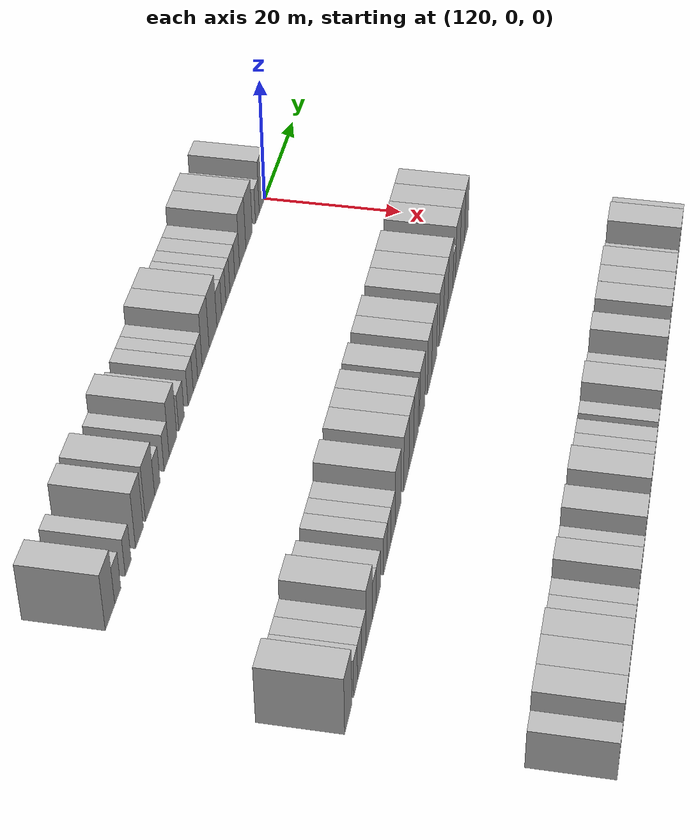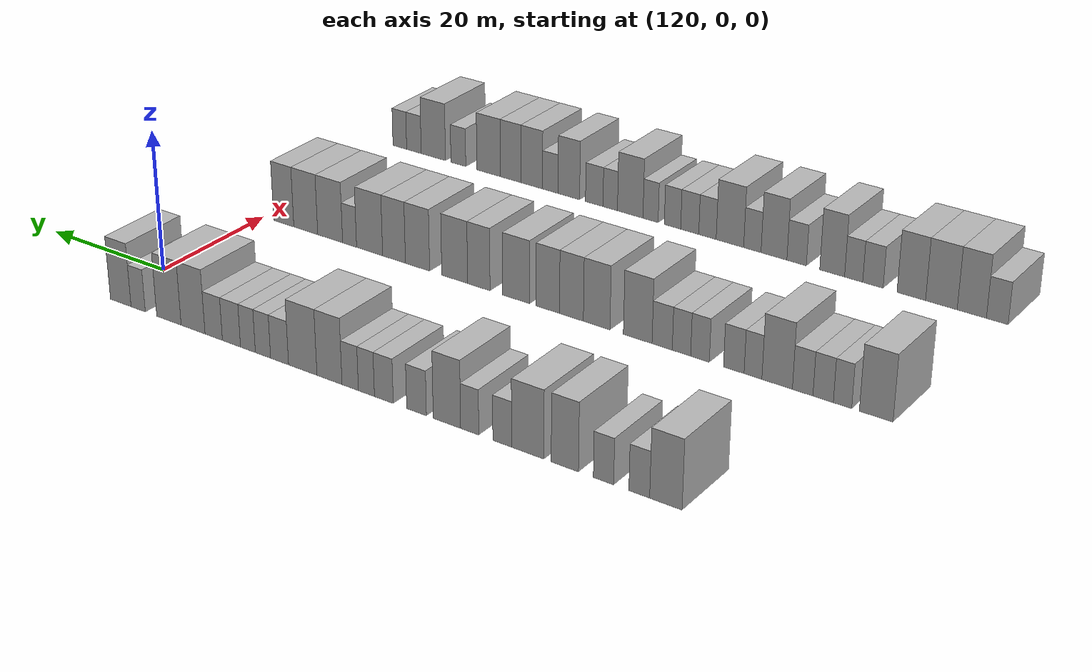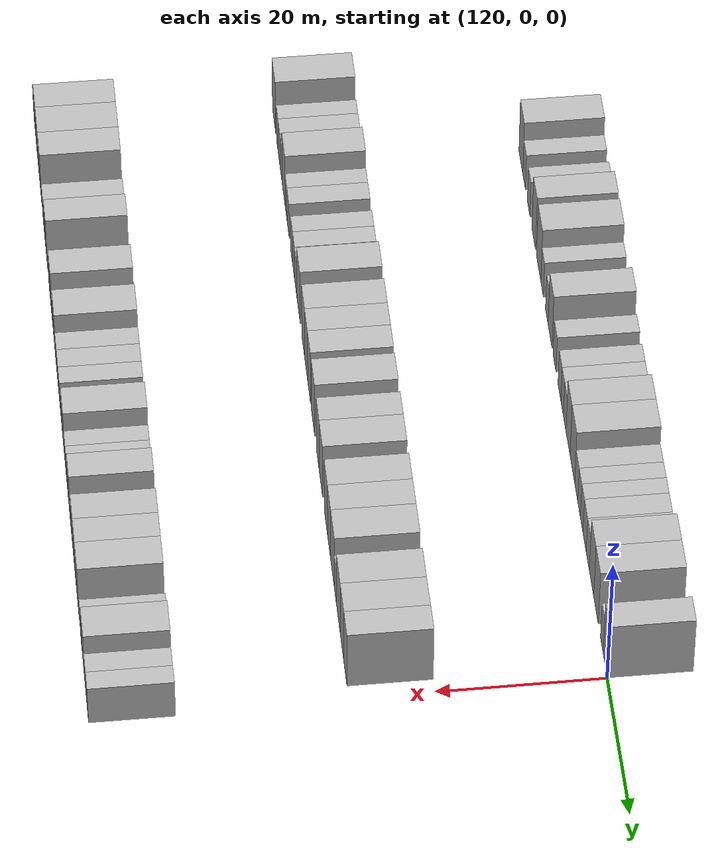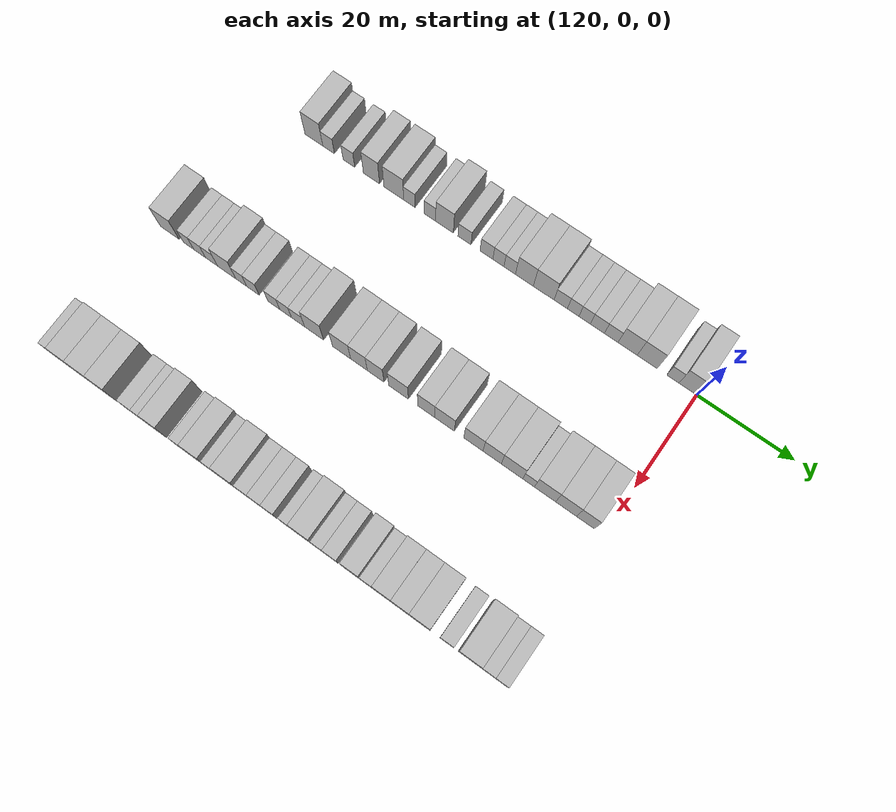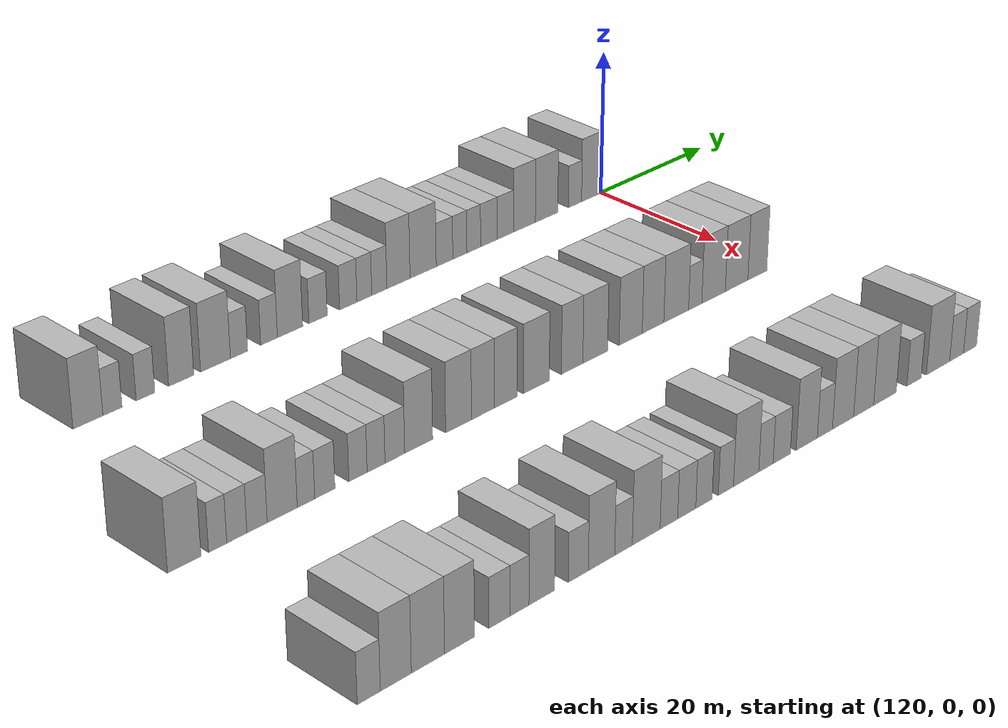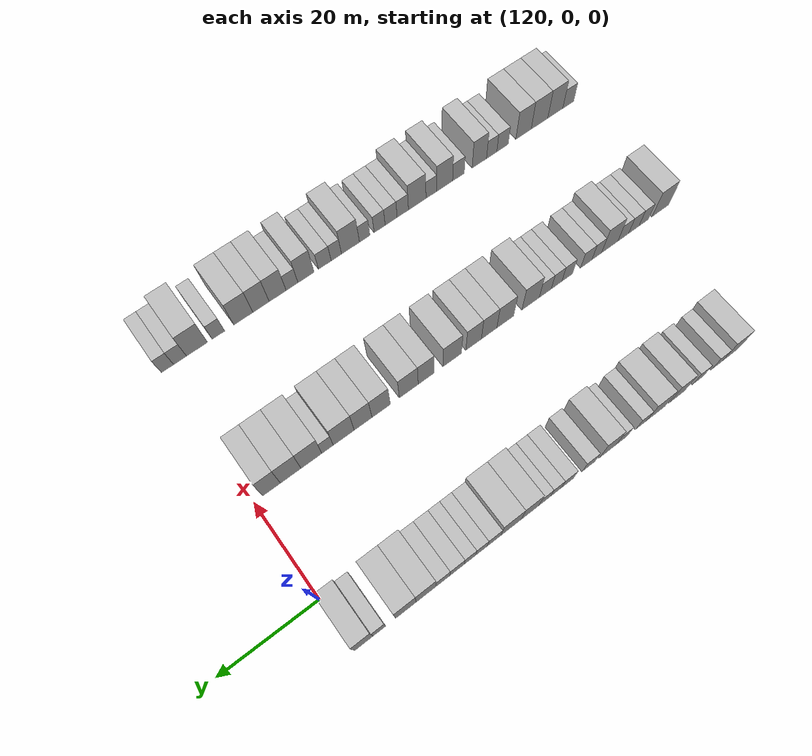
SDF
<sdf version="1.6">
 <world name="default">
  <model name="building_760">
   <static>1</static>
   <pose>115.0000 -84.1463 0 0.000000 0.000000 0.000000</pose>
   <link name="link">
    <pose>0 0 4.50 0 0 0</pose>
    <collision name="collision"><geometry><box><size>10.0000 4.1495 9.0000</size></box></geometry></collision>
    <visual name="visual">
     <cast_shadows>0</cast_shadows>
     <geometry><box><size>10.0000 4.1495 9.0000</size></box></geometry>
     <material>
      <script>
       <uri>model://HANNAS_wall/materials/scripts</uri>
       <uri>model://HANNAS_wall/materials/textures</uri>
       <name>vrc/HANNAS_wall</name>
      </script>
     </material>
    </visual>
   </link>
  </model>
  <model name="building_761">
   <static>1</static>
   <pose>115.0000 -80.7246 0 0.000000 0.000000 0.000000</pose>
   <link name="link">
    <pose>0 0 3.00 0 0 0</pose>
    <collision name="collision"><geometry><box><size>10.0000 2.6938 6.0000</size></box></geometry></collision>
    <visual name="visual">
     <cast_shadows>0</cast_shadows>
     <geometry><box><size>10.0000 2.6938 6.0000</size></box></geometry>
     <material>
      <script>
       <uri>model://HANNAS_wall/materials/scripts</uri>
       <uri>model://HANNAS_wall/materials/textures</uri>
       <name>vrc/HANNAS_wall</name>
      </script>
     </material>
    </visual>
   </link>
  </model>
  <model name="building_762">
   <static>1</static>
   <pose>115.0000 -76.0364 0 0.000000 0.000000 0.000000</pose>
   <link name="link">
    <pose>0 0 3.00 0 0 0</pose>
    <collision name="collision"><geometry><box><size>10.0000 2.6827 6.0000</size></box></geometry></collision>
    <visual name="visual">
     <cast_shadows>0</cast_shadows>
     <geometry><box><size>10.0000 2.6827 6.0000</size></box></geometry>
     <material>
      <script>
       <uri>model://HANNAS_wall/materials/scripts</uri>
       <uri>model://HANNAS_wall/materials/textures</uri>
       <name>vrc/HANNAS_wall</name>
      </script>
     </material>
    </visual>
   </link>
  </model>
  <model name="building_763">
   <static>1</static>
   <pose>115.0000 -70.8469 0 0.000000 0.000000 0.000000</pose>
   <link name="link">
    <pose>0 0 4.50 0 0 0</pose>
    <collision name="collision"><geometry><box><size>10.0000 3.6962 9.0000</size></box></geometry></collision>
    <visual name="visual">
     <cast_shadows>0</cast_shadows>
     <geometry><box><size>10.0000 3.6962 9.0000</size></box></geometry>
     <material>
      <script>
       <uri>model://HANNAS_wall/materials/scripts</uri>
       <uri>model://HANNAS_wall/materials/textures</uri>
       <name>vrc/HANNAS_wall</name>
      </script>
     </material>
    </visual>
   </link>
  </model>
  <model name="building_764">
   <static>1</static>
   <pose>115.0000 -65.7604 0 0.000000 0.000000 0.000000</pose>
   <link name="link">
    <pose>0 0 4.50 0 0 0</pose>
    <collision name="collision"><geometry><box><size>10.0000 4.4770 9.0000</size></box></geometry></collision>
    <visual name="visual">
     <cast_shadows>0</cast_shadows>
     <geometry><box><size>10.0000 4.4770 9.0000</size></box></geometry>
     <material>
      <script>
       <uri>model://HANNAS_wall/materials/scripts</uri>
       <uri>model://HANNAS_wall/materials/textures</uri>
       <name>vrc/HANNAS_wall</name>
      </script>
     </material>
    </visual>
   </link>
  </model>
  <model name="building_765">
   <static>1</static>
   <pose>115.0000 -62.2131 0 0.000000 0.000000 0.000000</pose>
   <link name="link">
    <pose>0 0 3.00 0 0 0</pose>
    <collision name="collision"><geometry><box><size>10.0000 2.6175 6.0000</size></box></geometry></collision>
    <visual name="visual">
     <cast_shadows>0</cast_shadows>
     <geometry><box><size>10.0000 2.6175 6.0000</size></box></geometry>
     <material>
      <script>
       <uri>model://HANNAS_wall/materials/scripts</uri>
       <uri>model://HANNAS_wall/materials/textures</uri>
       <name>vrc/HANNAS_wall</name>
      </script>
     </material>
    </visual>
   </link>
  </model>
  <model name="building_766">
   <static>1</static>
   <pose>115.0000 -57.6091 0 0.000000 0.000000 0.000000</pose>
   <link name="link">
    <pose>0 0 3.00 0 0 0</pose>
    <collision name="collision"><geometry><box><size>10.0000 2.5906 6.0000</size></box></geometry></collision>
    <visual name="visual">
     <cast_shadows>0</cast_shadows>
     <geometry><box><size>10.0000 2.5906 6.0000</size></box></geometry>
     <material>
      <script>
       <uri>model://HANNAS_wall/materials/scripts</uri>
       <uri>model://HANNAS_wall/materials/textures</uri>
       <name>vrc/HANNAS_wall</name>
      </script>
     </material>
    </visual>
   </link>
  </model>
  <model name="building_767">
   <static>1</static>
   <pose>115.0000 -54.3269 0 0.000000 0.000000 0.000000</pose>
   <link name="link">
    <pose>0 0 4.50 0 0 0</pose>
    <collision name="collision"><geometry><box><size>10.0000 3.9738 9.0000</size></box></geometry></collision>
    <visual name="visual">
     <cast_shadows>0</cast_shadows>
     <geometry><box><size>10.0000 3.9738 9.0000</size></box></geometry>
     <material>
      <script>
       <uri>model://HANNAS_wall/materials/scripts</uri>
       <uri>model://HANNAS_wall/materials/textures</uri>
       <name>vrc/HANNAS_wall</name>
      </script>
     </material>
    </visual>
   </link>
  </model>
  <model name="building_768">
   <static>1</static>
   <pose>115.0000 -49.8825 0 0.000000 0.000000 0.000000</pose>
   <link name="link">
    <pose>0 0 3.00 0 0 0</pose>
    <collision name="collision"><geometry><box><size>10.0000 2.9152 6.0000</size></box></geometry></collision>
    <visual name="visual">
     <cast_shadows>0</cast_shadows>
     <geometry><box><size>10.0000 2.9152 6.0000</size></box></geometry>
     <material>
      <script>
       <uri>model://HANNAS_wall/materials/scripts</uri>
       <uri>model://HANNAS_wall/materials/textures</uri>
       <name>vrc/HANNAS_wall</name>
      </script>
     </material>
    </visual>
   </link>
  </model>
  <model name="building_769">
   <static>1</static>
   <pose>115.0000 -45.0076 0 0.000000 0.000000 0.000000</pose>
   <link name="link">
    <pose>0 0 3.00 0 0 0</pose>
    <collision name="collision"><geometry><box><size>10.0000 2.8345 6.0000</size></box></geometry></collision>
    <visual name="visual">
     <cast_shadows>0</cast_shadows>
     <geometry><box><size>10.0000 2.8345 6.0000</size></box></geometry>
     <material>
      <script>
       <uri>model://HANNAS_wall/materials/scripts</uri>
       <uri>model://HANNAS_wall/materials/textures</uri>
       <name>vrc/HANNAS_wall</name>
      </script>
     </material>
    </visual>
   </link>
  </model>
  <model name="building_770">
   <static>1</static>
   <pose>115.0000 -42.3687 0 0.000000 0.000000 0.000000</pose>
   <link name="link">
    <pose>0 0 3.00 0 0 0</pose>
    <collision name="collision"><geometry><box><size>10.0000 2.4432 6.0000</size></box></geometry></collision>
    <visual name="visual">
     <cast_shadows>0</cast_shadows>
     <geometry><box><size>10.0000 2.4432 6.0000</size></box></geometry>
     <material>
      <script>
       <uri>model://HANNAS_wall/materials/scripts</uri>
       <uri>model://HANNAS_wall/materials/textures</uri>
       <name>vrc/HANNAS_wall</name>
      </script>
     </material>
    </visual>
   </link>
  </model>
  <model name="building_771">
   <static>1</static>
   <pose>115.0000 -39.8892 0 0.000000 0.000000 0.000000</pose>
   <link name="link">
    <pose>0 0 3.00 0 0 0</pose>
    <collision name="collision"><geometry><box><size>10.0000 2.5159 6.0000</size></box></geometry></collision>
    <visual name="visual">
     <cast_shadows>0</cast_shadows>
     <geometry><box><size>10.0000 2.5159 6.0000</size></box></geometry>
     <material>
      <script>
       <uri>model://HANNAS_wall/materials/scripts</uri>
       <uri>model://HANNAS_wall/materials/textures</uri>
       <name>vrc/HANNAS_wall</name>
      </script>
     </material>
    </visual>
   </link>
  </model>
  <model name="building_772">
   <static>1</static>
   <pose>115.0000 -36.6785 0 0.000000 0.000000 0.000000</pose>
   <link name="link">
    <pose>0 0 4.50 0 0 0</pose>
    <collision name="collision"><geometry><box><size>10.0000 3.9055 9.0000</size></box></geometry></collision>
    <visual name="visual">
     <cast_shadows>0</cast_shadows>
     <geometry><box><size>10.0000 3.9055 9.0000</size></box></geometry>
     <material>
      <script>
       <uri>model://HANNAS_wall/materials/scripts</uri>
       <uri>model://HANNAS_wall/materials/textures</uri>
       <name>vrc/HANNAS_wall</name>
      </script>
     </material>
    </visual>
   </link>
  </model>
  <model name="building_773">
   <static>1</static>
   <pose>115.0000 -32.4778 0 0.000000 0.000000 0.000000</pose>
   <link name="link">
    <pose>0 0 4.50 0 0 0</pose>
    <collision name="collision"><geometry><box><size>10.0000 4.4957 9.0000</size></box></geometry></collision>
    <visual name="visual">
     <cast_shadows>0</cast_shadows>
     <geometry><box><size>10.0000 4.4957 9.0000</size></box></geometry>
     <material>
      <script>
       <uri>model://HANNAS_wall/materials/scripts</uri>
       <uri>model://HANNAS_wall/materials/textures</uri>
       <name>vrc/HANNAS_wall</name>
      </script>
     </material>
    </visual>
   </link>
  </model>
  <model name="building_774">
   <static>1</static>
   <pose>115.0000 -28.7917 0 0.000000 0.000000 0.000000</pose>
   <link name="link">
    <pose>0 0 3.00 0 0 0</pose>
    <collision name="collision"><geometry><box><size>10.0000 2.8764 6.0000</size></box></geometry></collision>
    <visual name="visual">
     <cast_shadows>0</cast_shadows>
     <geometry><box><size>10.0000 2.8764 6.0000</size></box></geometry>
     <material>
      <script>
       <uri>model://HANNAS_wall/materials/scripts</uri>
       <uri>model://HANNAS_wall/materials/textures</uri>
       <name>vrc/HANNAS_wall</name>
      </script>
     </material>
    </visual>
   </link>
  </model>
  <model name="building_775">
   <static>1</static>
   <pose>115.0000 -26.1145 0 0.000000 0.000000 0.000000</pose>
   <link name="link">
    <pose>0 0 3.00 0 0 0</pose>
    <collision name="collision"><geometry><box><size>10.0000 2.4780 6.0000</size></box></geometry></collision>
    <visual name="visual">
     <cast_shadows>0</cast_shadows>
     <geometry><box><size>10.0000 2.4780 6.0000</size></box></geometry>
     <material>
      <script>
       <uri>model://HANNAS_wall/materials/scripts</uri>
       <uri>model://HANNAS_wall/materials/textures</uri>
       <name>vrc/HANNAS_wall</name>
      </script>
     </material>
    </visual>
   </link>
  </model>
  <model name="building_776">
   <static>1</static>
   <pose>115.0000 -23.6597 0 0.000000 0.000000 0.000000</pose>
   <link name="link">
    <pose>0 0 3.00 0 0 0</pose>
    <collision name="collision"><geometry><box><size>10.0000 2.4317 6.0000</size></box></geometry></collision>
    <visual name="visual">
     <cast_shadows>0</cast_shadows>
     <geometry><box><size>10.0000 2.4317 6.0000</size></box></geometry>
     <material>
      <script>
       <uri>model://HANNAS_wall/materials/scripts</uri>
       <uri>model://HANNAS_wall/materials/textures</uri>
       <name>vrc/HANNAS_wall</name>
      </script>
     </material>
    </visual>
   </link>
  </model>
  <model name="building_777">
   <static>1</static>
   <pose>115.0000 -20.9465 0 0.000000 0.000000 0.000000</pose>
   <link name="link">
    <pose>0 0 3.00 0 0 0</pose>
    <collision name="collision"><geometry><box><size>10.0000 2.9947 6.0000</size></box></geometry></collision>
    <visual name="visual">
     <cast_shadows>0</cast_shadows>
     <geometry><box><size>10.0000 2.9947 6.0000</size></box></geometry>
     <material>
      <script>
       <uri>model://HANNAS_wall/materials/scripts</uri>
       <uri>model://HANNAS_wall/materials/textures</uri>
       <name>vrc/HANNAS_wall</name>
      </script>
     </material>
    </visual>
   </link>
  </model>
  <model name="building_778">
   <static>1</static>
   <pose>115.0000 -17.9931 0 0.000000 0.000000 0.000000</pose>
   <link name="link">
    <pose>0 0 3.00 0 0 0</pose>
    <collision name="collision"><geometry><box><size>10.0000 2.9120 6.0000</size></box></geometry></collision>
    <visual name="visual">
     <cast_shadows>0</cast_shadows>
     <geometry><box><size>10.0000 2.9120 6.0000</size></box></geometry>
     <material>
      <script>
       <uri>model://HANNAS_wall/materials/scripts</uri>
       <uri>model://HANNAS_wall/materials/textures</uri>
       <name>vrc/HANNAS_wall</name>
      </script>
     </material>
    </visual>
   </link>
  </model>
  <model name="building_779">
   <static>1</static>
   <pose>115.0000 -14.5119 0 0.000000 0.000000 0.000000</pose>
   <link name="link">
    <pose>0 0 4.50 0 0 0</pose>
    <collision name="collision"><geometry><box><size>10.0000 4.0502 9.0000</size></box></geometry></collision>
    <visual name="visual">
     <cast_shadows>0</cast_shadows>
     <geometry><box><size>10.0000 4.0502 9.0000</size></box></geometry>
     <material>
      <script>
       <uri>model://HANNAS_wall/materials/scripts</uri>
       <uri>model://HANNAS_wall/materials/textures</uri>
       <name>vrc/HANNAS_wall</name>
      </script>
     </material>
    </visual>
   </link>
  </model>
  <model name="building_780">
   <static>1</static>
   <pose>115.0000 -10.3863 0 0.000000 0.000000 0.000000</pose>
   <link name="link">
    <pose>0 0 4.50 0 0 0</pose>
    <collision name="collision"><geometry><box><size>10.0000 4.2011 9.0000</size></box></geometry></collision>
    <visual name="visual">
     <cast_shadows>0</cast_shadows>
     <geometry><box><size>10.0000 4.2011 9.0000</size></box></geometry>
     <material>
      <script>
       <uri>model://HANNAS_wall/materials/scripts</uri>
       <uri>model://HANNAS_wall/materials/textures</uri>
       <name>vrc/HANNAS_wall</name>
      </script>
     </material>
    </visual>
   </link>
  </model>
  <model name="building_781">
   <static>1</static>
   <pose>115.0000 -5.0350 0 0.000000 0.000000 0.000000</pose>
   <link name="link">
    <pose>0 0 3.00 0 0 0</pose>
    <collision name="collision"><geometry><box><size>10.0000 2.5015 6.0000</size></box></geometry></collision>
    <visual name="visual">
     <cast_shadows>0</cast_shadows>
     <geometry><box><size>10.0000 2.5015 6.0000</size></box></geometry>
     <material>
      <script>
       <uri>model://HANNAS_wall/materials/scripts</uri>
       <uri>model://HANNAS_wall/materials/textures</uri>
       <name>vrc/HANNAS_wall</name>
      </script>
     </material>
    </visual>
   </link>
  </model>
  <model name="building_782">
   <static>1</static>
   <pose>115.0000 -1.9645 0 0.000000 0.000000 0.000000</pose>
   <link name="link">
    <pose>0 0 4.50 0 0 0</pose>
    <collision name="collision"><geometry><box><size>10.0000 3.6394 9.0000</size></box></geometry></collision>
    <visual name="visual">
     <cast_shadows>0</cast_shadows>
     <geometry><box><size>10.0000 3.6394 9.0000</size></box></geometry>
     <material>
      <script>
       <uri>model://HANNAS_wall/materials/scripts</uri>
       <uri>model://HANNAS_wall/materials/textures</uri>
       <name>vrc/HANNAS_wall</name>
      </script>
     </material>
    </visual>
   </link>
  </model>
  <model name="building_987">
   <static>1</static>
   <pose>145.0000 -94.4862 0 0.000000 0.000000 0.000000</pose>
   <link name="link">
    <pose>0 0 4.50 0 0 0</pose>
    <collision name="collision"><geometry><box><size>10.0000 4.3605 9.0000</size></box></geometry></collision>
    <visual name="visual">
     <cast_shadows>0</cast_shadows>
     <geometry><box><size>10.0000 4.3605 9.0000</size></box></geometry>
     <material>
      <script>
       <uri>model://HANNAS_wall/materials/scripts</uri>
       <uri>model://HANNAS_wall/materials/textures</uri>
       <name>vrc/HANNAS_wall</name>
      </script>
     </material>
    </visual>
   </link>
  </model>
  <model name="building_988">
   <static>1</static>
   <pose>145.0000 -90.0959 0 0.000000 0.000000 0.000000</pose>
   <link name="link">
    <pose>0 0 3.00 0 0 0</pose>
    <collision name="collision"><geometry><box><size>10.0000 2.4201 6.0000</size></box></geometry></collision>
    <visual name="visual">
     <cast_shadows>0</cast_shadows>
     <geometry><box><size>10.0000 2.4201 6.0000</size></box></geometry>
     <material>
      <script>
       <uri>model://HANNAS_wall/materials/scripts</uri>
       <uri>model://HANNAS_wall/materials/textures</uri>
       <name>vrc/HANNAS_wall</name>
      </script>
     </material>
    </visual>
   </link>
  </model>
  <model name="building_989">
   <static>1</static>
   <pose>145.0000 -87.5301 0 0.000000 0.000000 0.000000</pose>
   <link name="link">
    <pose>0 0 3.00 0 0 0</pose>
    <collision name="collision"><geometry><box><size>10.0000 2.7117 6.0000</size></box></geometry></collision>
    <visual name="visual">
     <cast_shadows>0</cast_shadows>
     <geometry><box><size>10.0000 2.7117 6.0000</size></box></geometry>
     <material>
      <script>
       <uri>model://HANNAS_wall/materials/scripts</uri>
       <uri>model://HANNAS_wall/materials/textures</uri>
       <name>vrc/HANNAS_wall</name>
      </script>
     </material>
    </visual>
   </link>
  </model>
  <model name="building_990">
   <static>1</static>
   <pose>145.0000 -84.7911 0 0.000000 0.000000 0.000000</pose>
   <link name="link">
    <pose>0 0 3.00 0 0 0</pose>
    <collision name="collision"><geometry><box><size>10.0000 2.7663 6.0000</size></box></geometry></collision>
    <visual name="visual">
     <cast_shadows>0</cast_shadows>
     <geometry><box><size>10.0000 2.7663 6.0000</size></box></geometry>
     <material>
      <script>
       <uri>model://HANNAS_wall/materials/scripts</uri>
       <uri>model://HANNAS_wall/materials/textures</uri>
       <name>vrc/HANNAS_wall</name>
      </script>
     </material>
    </visual>
   </link>
  </model>
  <model name="building_991">
   <static>1</static>
   <pose>145.0000 -81.3256 0 0.000000 0.000000 0.000000</pose>
   <link name="link">
    <pose>0 0 4.50 0 0 0</pose>
    <collision name="collision"><geometry><box><size>10.0000 4.1647 9.0000</size></box></geometry></collision>
    <visual name="visual">
     <cast_shadows>0</cast_shadows>
     <geometry><box><size>10.0000 4.1647 9.0000</size></box></geometry>
     <material>
      <script>
       <uri>model://HANNAS_wall/materials/scripts</uri>
       <uri>model://HANNAS_wall/materials/textures</uri>
       <name>vrc/HANNAS_wall</name>
      </script>
     </material>
    </visual>
   </link>
  </model>
  <model name="building_992">
   <static>1</static>
   <pose>145.0000 -78.0137 0 0.000000 0.000000 0.000000</pose>
   <link name="link">
    <pose>0 0 3.00 0 0 0</pose>
    <collision name="collision"><geometry><box><size>10.0000 2.4592 6.0000</size></box></geometry></collision>
    <visual name="visual">
     <cast_shadows>0</cast_shadows>
     <geometry><box><size>10.0000 2.4592 6.0000</size></box></geometry>
     <material>
      <script>
       <uri>model://HANNAS_wall/materials/scripts</uri>
       <uri>model://HANNAS_wall/materials/textures</uri>
       <name>vrc/HANNAS_wall</name>
      </script>
     </material>
    </visual>
   </link>
  </model>
  <model name="building_993">
   <static>1</static>
   <pose>145.0000 -75.3485 0 0.000000 0.000000 0.000000</pose>
   <link name="link">
    <pose>0 0 3.00 0 0 0</pose>
    <collision name="collision"><geometry><box><size>10.0000 2.8711 6.0000</size></box></geometry></collision>
    <visual name="visual">
     <cast_shadows>0</cast_shadows>
     <geometry><box><size>10.0000 2.8711 6.0000</size></box></geometry>
     <material>
      <script>
       <uri>model://HANNAS_wall/materials/scripts</uri>
       <uri>model://HANNAS_wall/materials/textures</uri>
       <name>vrc/HANNAS_wall</name>
      </script>
     </material>
    </visual>
   </link>
  </model>
  <model name="building_994">
   <static>1</static>
   <pose>145.0000 -70.5817 0 0.000000 0.000000 0.000000</pose>
   <link name="link">
    <pose>0 0 3.00 0 0 0</pose>
    <collision name="collision"><geometry><box><size>10.0000 2.6624 6.0000</size></box></geometry></collision>
    <visual name="visual">
     <cast_shadows>0</cast_shadows>
     <geometry><box><size>10.0000 2.6624 6.0000</size></box></geometry>
     <material>
      <script>
       <uri>model://HANNAS_wall/materials/scripts</uri>
       <uri>model://HANNAS_wall/materials/textures</uri>
       <name>vrc/HANNAS_wall</name>
      </script>
     </material>
    </visual>
   </link>
  </model>
  <model name="building_995">
   <static>1</static>
   <pose>145.0000 -67.9316 0 0.000000 0.000000 0.000000</pose>
   <link name="link">
    <pose>0 0 3.00 0 0 0</pose>
    <collision name="collision"><geometry><box><size>10.0000 2.6379 6.0000</size></box></geometry></collision>
    <visual name="visual">
     <cast_shadows>0</cast_shadows>
     <geometry><box><size>10.0000 2.6379 6.0000</size></box></geometry>
     <material>
      <script>
       <uri>model://HANNAS_wall/materials/scripts</uri>
       <uri>model://HANNAS_wall/materials/textures</uri>
       <name>vrc/HANNAS_wall</name>
      </script>
     </material>
    </visual>
   </link>
  </model>
  <model name="building_996">
   <static>1</static>
   <pose>145.0000 -65.1436 0 0.000000 0.000000 0.000000</pose>
   <link name="link">
    <pose>0 0 3.00 0 0 0</pose>
    <collision name="collision"><geometry><box><size>10.0000 2.9381 6.0000</size></box></geometry></collision>
    <visual name="visual">
     <cast_shadows>0</cast_shadows>
     <geometry><box><size>10.0000 2.9381 6.0000</size></box></geometry>
     <material>
      <script>
       <uri>model://HANNAS_wall/materials/scripts</uri>
       <uri>model://HANNAS_wall/materials/textures</uri>
       <name>vrc/HANNAS_wall</name>
      </script>
     </material>
    </visual>
   </link>
  </model>
  <model name="building_997">
   <static>1</static>
   <pose>145.0000 -61.5649 0 0.000000 0.000000 0.000000</pose>
   <link name="link">
    <pose>0 0 4.50 0 0 0</pose>
    <collision name="collision"><geometry><box><size>10.0000 4.2193 9.0000</size></box></geometry></collision>
    <visual name="visual">
     <cast_shadows>0</cast_shadows>
     <geometry><box><size>10.0000 4.2193 9.0000</size></box></geometry>
     <material>
      <script>
       <uri>model://HANNAS_wall/materials/scripts</uri>
       <uri>model://HANNAS_wall/materials/textures</uri>
       <name>vrc/HANNAS_wall</name>
      </script>
     </material>
    </visual>
   </link>
  </model>
  <model name="building_998">
   <static>1</static>
   <pose>145.0000 -55.4495 0 0.000000 0.000000 0.000000</pose>
   <link name="link">
    <pose>0 0 4.50 0 0 0</pose>
    <collision name="collision"><geometry><box><size>10.0000 4.0115 9.0000</size></box></geometry></collision>
    <visual name="visual">
     <cast_shadows>0</cast_shadows>
     <geometry><box><size>10.0000 4.0115 9.0000</size></box></geometry>
     <material>
      <script>
       <uri>model://HANNAS_wall/materials/scripts</uri>
       <uri>model://HANNAS_wall/materials/textures</uri>
       <name>vrc/HANNAS_wall</name>
      </script>
     </material>
    </visual>
   </link>
  </model>
  <model name="building_999">
   <static>1</static>
   <pose>145.0000 -51.6180 0 0.000000 0.000000 0.000000</pose>
   <link name="link">
    <pose>0 0 4.50 0 0 0</pose>
    <collision name="collision"><geometry><box><size>10.0000 3.6515 9.0000</size></box></geometry></collision>
    <visual name="visual">
     <cast_shadows>0</cast_shadows>
     <geometry><box><size>10.0000 3.6515 9.0000</size></box></geometry>
     <material>
      <script>
       <uri>model://HANNAS_wall/materials/scripts</uri>
       <uri>model://HANNAS_wall/materials/textures</uri>
       <name>vrc/HANNAS_wall</name>
      </script>
     </material>
    </visual>
   </link>
  </model>
  <model name="building_1000">
   <static>1</static>
   <pose>145.0000 -47.9720 0 0.000000 0.000000 0.000000</pose>
   <link name="link">
    <pose>0 0 4.50 0 0 0</pose>
    <collision name="collision"><geometry><box><size>10.0000 3.6406 9.0000</size></box></geometry></collision>
    <visual name="visual">
     <cast_shadows>0</cast_shadows>
     <geometry><box><size>10.0000 3.6406 9.0000</size></box></geometry>
     <material>
      <script>
       <uri>model://HANNAS_wall/materials/scripts</uri>
       <uri>model://HANNAS_wall/materials/textures</uri>
       <name>vrc/HANNAS_wall</name>
      </script>
     </material>
    </visual>
   </link>
  </model>
  <model name="building_1001">
   <static>1</static>
   <pose>145.0000 -43.0184 0 0.000000 0.000000 0.000000</pose>
   <link name="link">
    <pose>0 0 4.50 0 0 0</pose>
    <collision name="collision"><geometry><box><size>10.0000 4.2666 9.0000</size></box></geometry></collision>
    <visual name="visual">
     <cast_shadows>0</cast_shadows>
     <geometry><box><size>10.0000 4.2666 9.0000</size></box></geometry>
     <material>
      <script>
       <uri>model://HANNAS_wall/materials/scripts</uri>
       <uri>model://HANNAS_wall/materials/textures</uri>
       <name>vrc/HANNAS_wall</name>
      </script>
     </material>
    </visual>
   </link>
  </model>
  <model name="building_1002">
   <static>1</static>
   <pose>145.0000 -37.0750 0 0.000000 0.000000 0.000000</pose>
   <link name="link">
    <pose>0 0 4.50 0 0 0</pose>
    <collision name="collision"><geometry><box><size>10.0000 3.6202 9.0000</size></box></geometry></collision>
    <visual name="visual">
     <cast_shadows>0</cast_shadows>
     <geometry><box><size>10.0000 3.6202 9.0000</size></box></geometry>
     <material>
      <script>
       <uri>model://HANNAS_wall/materials/scripts</uri>
       <uri>model://HANNAS_wall/materials/textures</uri>
       <name>vrc/HANNAS_wall</name>
      </script>
     </material>
    </visual>
   </link>
  </model>
  <model name="building_1003">
   <static>1</static>
   <pose>145.0000 -33.1521 0 0.000000 0.000000 0.000000</pose>
   <link name="link">
    <pose>0 0 4.50 0 0 0</pose>
    <collision name="collision"><geometry><box><size>10.0000 4.2256 9.0000</size></box></geometry></collision>
    <visual name="visual">
     <cast_shadows>0</cast_shadows>
     <geometry><box><size>10.0000 4.2256 9.0000</size></box></geometry>
     <material>
      <script>
       <uri>model://HANNAS_wall/materials/scripts</uri>
       <uri>model://HANNAS_wall/materials/textures</uri>
       <name>vrc/HANNAS_wall</name>
      </script>
     </material>
    </visual>
   </link>
  </model>
  <model name="building_1004">
   <static>1</static>
   <pose>145.0000 -27.0145 0 0.000000 0.000000 0.000000</pose>
   <link name="link">
    <pose>0 0 4.50 0 0 0</pose>
    <collision name="collision"><geometry><box><size>10.0000 4.0498 9.0000</size></box></geometry></collision>
    <visual name="visual">
     <cast_shadows>0</cast_shadows>
     <geometry><box><size>10.0000 4.0498 9.0000</size></box></geometry>
     <material>
      <script>
       <uri>model://HANNAS_wall/materials/scripts</uri>
       <uri>model://HANNAS_wall/materials/textures</uri>
       <name>vrc/HANNAS_wall</name>
      </script>
     </material>
    </visual>
   </link>
  </model>
  <model name="building_1005">
   <static>1</static>
   <pose>145.0000 -23.0561 0 0.000000 0.000000 0.000000</pose>
   <link name="link">
    <pose>0 0 4.50 0 0 0</pose>
    <collision name="collision"><geometry><box><size>10.0000 3.8669 9.0000</size></box></geometry></collision>
    <visual name="visual">
     <cast_shadows>0</cast_shadows>
     <geometry><box><size>10.0000 3.8669 9.0000</size></box></geometry>
     <material>
      <script>
       <uri>model://HANNAS_wall/materials/scripts</uri>
       <uri>model://HANNAS_wall/materials/textures</uri>
       <name>vrc/HANNAS_wall</name>
      </script>
     </material>
    </visual>
   </link>
  </model>
  <model name="building_1006">
   <static>1</static>
   <pose>145.0000 -18.8757 0 0.000000 0.000000 0.000000</pose>
   <link name="link">
    <pose>0 0 4.50 0 0 0</pose>
    <collision name="collision"><geometry><box><size>10.0000 4.4938 9.0000</size></box></geometry></collision>
    <visual name="visual">
     <cast_shadows>0</cast_shadows>
     <geometry><box><size>10.0000 4.4938 9.0000</size></box></geometry>
     <material>
      <script>
       <uri>model://HANNAS_wall/materials/scripts</uri>
       <uri>model://HANNAS_wall/materials/textures</uri>
       <name>vrc/HANNAS_wall</name>
      </script>
     </material>
    </visual>
   </link>
  </model>
  <model name="building_1007">
   <static>1</static>
   <pose>145.0000 -15.4148 0 0.000000 0.000000 0.000000</pose>
   <link name="link">
    <pose>0 0 3.00 0 0 0</pose>
    <collision name="collision"><geometry><box><size>10.0000 2.4281 6.0000</size></box></geometry></collision>
    <visual name="visual">
     <cast_shadows>0</cast_shadows>
     <geometry><box><size>10.0000 2.4281 6.0000</size></box></geometry>
     <material>
      <script>
       <uri>model://HANNAS_wall/materials/scripts</uri>
       <uri>model://HANNAS_wall/materials/textures</uri>
       <name>vrc/HANNAS_wall</name>
      </script>
     </material>
    </visual>
   </link>
  </model>
  <model name="building_1008">
   <static>1</static>
   <pose>145.0000 -12.0034 0 0.000000 0.000000 0.000000</pose>
   <link name="link">
    <pose>0 0 4.50 0 0 0</pose>
    <collision name="collision"><geometry><box><size>10.0000 4.3946 9.0000</size></box></geometry></collision>
    <visual name="visual">
     <cast_shadows>0</cast_shadows>
     <geometry><box><size>10.0000 4.3946 9.0000</size></box></geometry>
     <material>
      <script>
       <uri>model://HANNAS_wall/materials/scripts</uri>
       <uri>model://HANNAS_wall/materials/textures</uri>
       <name>vrc/HANNAS_wall</name>
      </script>
     </material>
    </visual>
   </link>
  </model>
  <model name="building_1009">
   <static>1</static>
   <pose>145.0000 -7.6673 0 0.000000 0.000000 0.000000</pose>
   <link name="link">
    <pose>0 0 4.50 0 0 0</pose>
    <collision name="collision"><geometry><box><size>10.0000 4.2778 9.0000</size></box></geometry></collision>
    <visual name="visual">
     <cast_shadows>0</cast_shadows>
     <geometry><box><size>10.0000 4.2778 9.0000</size></box></geometry>
     <material>
      <script>
       <uri>model://HANNAS_wall/materials/scripts</uri>
       <uri>model://HANNAS_wall/materials/textures</uri>
       <name>vrc/HANNAS_wall</name>
      </script>
     </material>
    </visual>
   </link>
  </model>
  <model name="building_1010">
   <static>1</static>
   <pose>145.0000 -3.7107 0 0.000000 0.000000 0.000000</pose>
   <link name="link">
    <pose>0 0 4.50 0 0 0</pose>
    <collision name="collision"><geometry><box><size>10.0000 3.6353 9.0000</size></box></geometry></collision>
    <visual name="visual">
     <cast_shadows>0</cast_shadows>
     <geometry><box><size>10.0000 3.6353 9.0000</size></box></geometry>
     <material>
      <script>
       <uri>model://HANNAS_wall/materials/scripts</uri>
       <uri>model://HANNAS_wall/materials/textures</uri>
       <name>vrc/HANNAS_wall</name>
      </script>
     </material>
    </visual>
   </link>
  </model>
  <model name="building_1194">
   <static>1</static>
   <pose>175.0000 -96.3776 0 0.000000 0.000000 0.000000</pose>
   <link name="link">
    <pose>0 0 3.00 0 0 0</pose>
    <collision name="collision"><geometry><box><size>10.0000 2.9568 6.0000</size></box></geometry></collision>
    <visual name="visual">
     <cast_shadows>0</cast_shadows>
     <geometry><box><size>10.0000 2.9568 6.0000</size></box></geometry>
     <material>
      <script>
       <uri>model://HANNAS_wall/materials/scripts</uri>
       <uri>model://HANNAS_wall/materials/textures</uri>
       <name>vrc/HANNAS_wall</name>
      </script>
     </material>
    </visual>
   </link>
  </model>
  <model name="building_1195">
   <static>1</static>
   <pose>175.0000 -92.8881 0 0.000000 0.000000 0.000000</pose>
   <link name="link">
    <pose>0 0 4.50 0 0 0</pose>
    <collision name="collision"><geometry><box><size>10.0000 4.0221 9.0000</size></box></geometry></collision>
    <visual name="visual">
     <cast_shadows>0</cast_shadows>
     <geometry><box><size>10.0000 4.0221 9.0000</size></box></geometry>
     <material>
      <script>
       <uri>model://HANNAS_wall/materials/scripts</uri>
       <uri>model://HANNAS_wall/materials/textures</uri>
       <name>vrc/HANNAS_wall</name>
      </script>
     </material>
    </visual>
   </link>
  </model>
  <model name="building_1196">
   <static>1</static>
   <pose>175.0000 -88.6669 0 0.000000 0.000000 0.000000</pose>
   <link name="link">
    <pose>0 0 4.50 0 0 0</pose>
    <collision name="collision"><geometry><box><size>10.0000 4.4202 9.0000</size></box></geometry></collision>
    <visual name="visual">
     <cast_shadows>0</cast_shadows>
     <geometry><box><size>10.0000 4.4202 9.0000</size></box></geometry>
     <material>
      <script>
       <uri>model://HANNAS_wall/materials/scripts</uri>
       <uri>model://HANNAS_wall/materials/textures</uri>
       <name>vrc/HANNAS_wall</name>
      </script>
     </material>
    </visual>
   </link>
  </model>
  <model name="building_1197">
   <static>1</static>
   <pose>175.0000 -84.4337 0 0.000000 0.000000 0.000000</pose>
   <link name="link">
    <pose>0 0 4.50 0 0 0</pose>
    <collision name="collision"><geometry><box><size>10.0000 4.0463 9.0000</size></box></geometry></collision>
    <visual name="visual">
     <cast_shadows>0</cast_shadows>
     <geometry><box><size>10.0000 4.0463 9.0000</size></box></geometry>
     <material>
      <script>
       <uri>model://HANNAS_wall/materials/scripts</uri>
       <uri>model://HANNAS_wall/materials/textures</uri>
       <name>vrc/HANNAS_wall</name>
      </script>
     </material>
    </visual>
   </link>
  </model>
  <model name="building_1198">
   <static>1</static>
   <pose>175.0000 -78.9320 0 0.000000 0.000000 0.000000</pose>
   <link name="link">
    <pose>0 0 3.00 0 0 0</pose>
    <collision name="collision"><geometry><box><size>10.0000 2.9569 6.0000</size></box></geometry></collision>
    <visual name="visual">
     <cast_shadows>0</cast_shadows>
     <geometry><box><size>10.0000 2.9569 6.0000</size></box></geometry>
     <material>
      <script>
       <uri>model://HANNAS_wall/materials/scripts</uri>
       <uri>model://HANNAS_wall/materials/textures</uri>
       <name>vrc/HANNAS_wall</name>
      </script>
     </material>
    </visual>
   </link>
  </model>
  <model name="building_1199">
   <static>1</static>
   <pose>175.0000 -76.1273 0 0.000000 0.000000 0.000000</pose>
   <link name="link">
    <pose>0 0 3.00 0 0 0</pose>
    <collision name="collision"><geometry><box><size>10.0000 2.6527 6.0000</size></box></geometry></collision>
    <visual name="visual">
     <cast_shadows>0</cast_shadows>
     <geometry><box><size>10.0000 2.6527 6.0000</size></box></geometry>
     <material>
      <script>
       <uri>model://HANNAS_wall/materials/scripts</uri>
       <uri>model://HANNAS_wall/materials/textures</uri>
       <name>vrc/HANNAS_wall</name>
      </script>
     </material>
    </visual>
   </link>
  </model>
  <model name="building_1200">
   <static>1</static>
   <pose>175.0000 -72.9641 0 0.000000 0.000000 0.000000</pose>
   <link name="link">
    <pose>0 0 4.50 0 0 0</pose>
    <collision name="collision"><geometry><box><size>10.0000 3.6738 9.0000</size></box></geometry></collision>
    <visual name="visual">
     <cast_shadows>0</cast_shadows>
     <geometry><box><size>10.0000 3.6738 9.0000</size></box></geometry>
     <material>
      <script>
       <uri>model://HANNAS_wall/materials/scripts</uri>
       <uri>model://HANNAS_wall/materials/textures</uri>
       <name>vrc/HANNAS_wall</name>
      </script>
     </material>
    </visual>
   </link>
  </model>
  <model name="building_1201">
   <static>1</static>
   <pose>175.0000 -67.6575 0 0.000000 0.000000 0.000000</pose>
   <link name="link">
    <pose>0 0 3.00 0 0 0</pose>
    <collision name="collision"><geometry><box><size>10.0000 2.9393 6.0000</size></box></geometry></collision>
    <visual name="visual">
     <cast_shadows>0</cast_shadows>
     <geometry><box><size>10.0000 2.9393 6.0000</size></box></geometry>
     <material>
      <script>
       <uri>model://HANNAS_wall/materials/scripts</uri>
       <uri>model://HANNAS_wall/materials/textures</uri>
       <name>vrc/HANNAS_wall</name>
      </script>
     </material>
    </visual>
   </link>
  </model>
  <model name="building_1202">
   <static>1</static>
   <pose>175.0000 -64.2116 0 0.000000 0.000000 0.000000</pose>
   <link name="link">
    <pose>0 0 4.50 0 0 0</pose>
    <collision name="collision"><geometry><box><size>10.0000 3.9525 9.0000</size></box></geometry></collision>
    <visual name="visual">
     <cast_shadows>0</cast_shadows>
     <geometry><box><size>10.0000 3.9525 9.0000</size></box></geometry>
     <material>
      <script>
       <uri>model://HANNAS_wall/materials/scripts</uri>
       <uri>model://HANNAS_wall/materials/textures</uri>
       <name>vrc/HANNAS_wall</name>
      </script>
     </material>
    </visual>
   </link>
  </model>
  <model name="building_1203">
   <static>1</static>
   <pose>175.0000 -60.8942 0 0.000000 0.000000 0.000000</pose>
   <link name="link">
    <pose>0 0 3.00 0 0 0</pose>
    <collision name="collision"><geometry><box><size>10.0000 2.6822 6.0000</size></box></geometry></collision>
    <visual name="visual">
     <cast_shadows>0</cast_shadows>
     <geometry><box><size>10.0000 2.6822 6.0000</size></box></geometry>
     <material>
      <script>
       <uri>model://HANNAS_wall/materials/scripts</uri>
       <uri>model://HANNAS_wall/materials/textures</uri>
       <name>vrc/HANNAS_wall</name>
      </script>
     </material>
    </visual>
   </link>
  </model>
  <model name="building_1204">
   <static>1</static>
   <pose>175.0000 -57.4009 0 0.000000 0.000000 0.000000</pose>
   <link name="link">
    <pose>0 0 4.50 0 0 0</pose>
    <collision name="collision"><geometry><box><size>10.0000 4.3044 9.0000</size></box></geometry></collision>
    <visual name="visual">
     <cast_shadows>0</cast_shadows>
     <geometry><box><size>10.0000 4.3044 9.0000</size></box></geometry>
     <material>
      <script>
       <uri>model://HANNAS_wall/materials/scripts</uri>
       <uri>model://HANNAS_wall/materials/textures</uri>
       <name>vrc/HANNAS_wall</name>
      </script>
     </material>
    </visual>
   </link>
  </model>
  <model name="building_1205">
   <static>1</static>
   <pose>175.0000 -53.8703 0 0.000000 0.000000 0.000000</pose>
   <link name="link">
    <pose>0 0 3.00 0 0 0</pose>
    <collision name="collision"><geometry><box><size>10.0000 2.7569 6.0000</size></box></geometry></collision>
    <visual name="visual">
     <cast_shadows>0</cast_shadows>
     <geometry><box><size>10.0000 2.7569 6.0000</size></box></geometry>
     <material>
      <script>
       <uri>model://HANNAS_wall/materials/scripts</uri>
       <uri>model://HANNAS_wall/materials/textures</uri>
       <name>vrc/HANNAS_wall</name>
      </script>
     </material>
    </visual>
   </link>
  </model>
  <model name="building_1206">
   <static>1</static>
   <pose>175.0000 -51.0477 0 0.000000 0.000000 0.000000</pose>
   <link name="link">
    <pose>0 0 3.00 0 0 0</pose>
    <collision name="collision"><geometry><box><size>10.0000 2.8883 6.0000</size></box></geometry></collision>
    <visual name="visual">
     <cast_shadows>0</cast_shadows>
     <geometry><box><size>10.0000 2.8883 6.0000</size></box></geometry>
     <material>
      <script>
       <uri>model://HANNAS_wall/materials/scripts</uri>
       <uri>model://HANNAS_wall/materials/textures</uri>
       <name>vrc/HANNAS_wall</name>
      </script>
     </material>
    </visual>
   </link>
  </model>
  <model name="building_1207">
   <static>1</static>
   <pose>175.0000 -48.2825 0 0.000000 0.000000 0.000000</pose>
   <link name="link">
    <pose>0 0 3.00 0 0 0</pose>
    <collision name="collision"><geometry><box><size>10.0000 2.6421 6.0000</size></box></geometry></collision>
    <visual name="visual">
     <cast_shadows>0</cast_shadows>
     <geometry><box><size>10.0000 2.6421 6.0000</size></box></geometry>
     <material>
      <script>
       <uri>model://HANNAS_wall/materials/scripts</uri>
       <uri>model://HANNAS_wall/materials/textures</uri>
       <name>vrc/HANNAS_wall</name>
      </script>
     </material>
    </visual>
   </link>
  </model>
  <model name="building_1208">
   <static>1</static>
   <pose>175.0000 -44.7201 0 0.000000 0.000000 0.000000</pose>
   <link name="link">
    <pose>0 0 3.00 0 0 0</pose>
    <collision name="collision"><geometry><box><size>10.0000 2.4827 6.0000</size></box></geometry></collision>
    <visual name="visual">
     <cast_shadows>0</cast_shadows>
     <geometry><box><size>10.0000 2.4827 6.0000</size></box></geometry>
     <material>
      <script>
       <uri>model://HANNAS_wall/materials/scripts</uri>
       <uri>model://HANNAS_wall/materials/textures</uri>
       <name>vrc/HANNAS_wall</name>
      </script>
     </material>
    </visual>
   </link>
  </model>
  <model name="building_1209">
   <static>1</static>
   <pose>175.0000 -41.3715 0 0.000000 0.000000 0.000000</pose>
   <link name="link">
    <pose>0 0 4.50 0 0 0</pose>
    <collision name="collision"><geometry><box><size>10.0000 4.2144 9.0000</size></box></geometry></collision>
    <visual name="visual">
     <cast_shadows>0</cast_shadows>
     <geometry><box><size>10.0000 4.2144 9.0000</size></box></geometry>
     <material>
      <script>
       <uri>model://HANNAS_wall/materials/scripts</uri>
       <uri>model://HANNAS_wall/materials/textures</uri>
       <name>vrc/HANNAS_wall</name>
      </script>
     </material>
    </visual>
   </link>
  </model>
  <model name="building_1210">
   <static>1</static>
   <pose>175.0000 -38.0554 0 0.000000 0.000000 0.000000</pose>
   <link name="link">
    <pose>0 0 3.00 0 0 0</pose>
    <collision name="collision"><geometry><box><size>10.0000 2.4179 6.0000</size></box></geometry></collision>
    <visual name="visual">
     <cast_shadows>0</cast_shadows>
     <geometry><box><size>10.0000 2.4179 6.0000</size></box></geometry>
     <material>
      <script>
       <uri>model://HANNAS_wall/materials/scripts</uri>
       <uri>model://HANNAS_wall/materials/textures</uri>
       <name>vrc/HANNAS_wall</name>
      </script>
     </material>
    </visual>
   </link>
  </model>
  <model name="building_1211">
   <static>1</static>
   <pose>175.0000 -35.3718 0 0.000000 0.000000 0.000000</pose>
   <link name="link">
    <pose>0 0 3.00 0 0 0</pose>
    <collision name="collision"><geometry><box><size>10.0000 2.9492 6.0000</size></box></geometry></collision>
    <visual name="visual">
     <cast_shadows>0</cast_shadows>
     <geometry><box><size>10.0000 2.9492 6.0000</size></box></geometry>
     <material>
      <script>
       <uri>model://HANNAS_wall/materials/scripts</uri>
       <uri>model://HANNAS_wall/materials/textures</uri>
       <name>vrc/HANNAS_wall</name>
      </script>
     </material>
    </visual>
   </link>
  </model>
  <model name="building_1212">
   <static>1</static>
   <pose>175.0000 -31.0522 0 0.000000 0.000000 0.000000</pose>
   <link name="link">
    <pose>0 0 4.50 0 0 0</pose>
    <collision name="collision"><geometry><box><size>10.0000 3.6901 9.0000</size></box></geometry></collision>
    <visual name="visual">
     <cast_shadows>0</cast_shadows>
     <geometry><box><size>10.0000 3.6901 9.0000</size></box></geometry>
     <material>
      <script>
       <uri>model://HANNAS_wall/materials/scripts</uri>
       <uri>model://HANNAS_wall/materials/textures</uri>
       <name>vrc/HANNAS_wall</name>
      </script>
     </material>
    </visual>
   </link>
  </model>
  <model name="building_1213">
   <static>1</static>
   <pose>175.0000 -27.8655 0 0.000000 0.000000 0.000000</pose>
   <link name="link">
    <pose>0 0 3.00 0 0 0</pose>
    <collision name="collision"><geometry><box><size>10.0000 2.6834 6.0000</size></box></geometry></collision>
    <visual name="visual">
     <cast_shadows>0</cast_shadows>
     <geometry><box><size>10.0000 2.6834 6.0000</size></box></geometry>
     <material>
      <script>
       <uri>model://HANNAS_wall/materials/scripts</uri>
       <uri>model://HANNAS_wall/materials/textures</uri>
       <name>vrc/HANNAS_wall</name>
      </script>
     </material>
    </visual>
   </link>
  </model>
  <model name="building_1214">
   <static>1</static>
   <pose>175.0000 -24.6272 0 0.000000 0.000000 0.000000</pose>
   <link name="link">
    <pose>0 0 4.50 0 0 0</pose>
    <collision name="collision"><geometry><box><size>10.0000 3.7932 9.0000</size></box></geometry></collision>
    <visual name="visual">
     <cast_shadows>0</cast_shadows>
     <geometry><box><size>10.0000 3.7932 9.0000</size></box></geometry>
     <material>
      <script>
       <uri>model://HANNAS_wall/materials/scripts</uri>
       <uri>model://HANNAS_wall/materials/textures</uri>
       <name>vrc/HANNAS_wall</name>
      </script>
     </material>
    </visual>
   </link>
  </model>
  <model name="building_1215">
   <static>1</static>
   <pose>175.0000 -20.9063 0 0.000000 0.000000 0.000000</pose>
   <link name="link">
    <pose>0 0 4.50 0 0 0</pose>
    <collision name="collision"><geometry><box><size>10.0000 3.6485 9.0000</size></box></geometry></collision>
    <visual name="visual">
     <cast_shadows>0</cast_shadows>
     <geometry><box><size>10.0000 3.6485 9.0000</size></box></geometry>
     <material>
      <script>
       <uri>model://HANNAS_wall/materials/scripts</uri>
       <uri>model://HANNAS_wall/materials/textures</uri>
       <name>vrc/HANNAS_wall</name>
      </script>
     </material>
    </visual>
   </link>
  </model>
  <model name="building_1216">
   <static>1</static>
   <pose>175.0000 -16.9851 0 0.000000 0.000000 0.000000</pose>
   <link name="link">
    <pose>0 0 4.50 0 0 0</pose>
    <collision name="collision"><geometry><box><size>10.0000 4.1938 9.0000</size></box></geometry></collision>
    <visual name="visual">
     <cast_shadows>0</cast_shadows>
     <geometry><box><size>10.0000 4.1938 9.0000</size></box></geometry>
     <material>
      <script>
       <uri>model://HANNAS_wall/materials/scripts</uri>
       <uri>model://HANNAS_wall/materials/textures</uri>
       <name>vrc/HANNAS_wall</name>
      </script>
     </material>
    </visual>
   </link>
  </model>
  <model name="building_1217">
   <static>1</static>
   <pose>175.0000 -11.5327 0 0.000000 0.000000 0.000000</pose>
   <link name="link">
    <pose>0 0 3.00 0 0 0</pose>
    <collision name="collision"><geometry><box><size>10.0000 2.7111 6.0000</size></box></geometry></collision>
    <visual name="visual">
     <cast_shadows>0</cast_shadows>
     <geometry><box><size>10.0000 2.7111 6.0000</size></box></geometry>
     <material>
      <script>
       <uri>model://HANNAS_wall/materials/scripts</uri>
       <uri>model://HANNAS_wall/materials/textures</uri>
       <name>vrc/HANNAS_wall</name>
      </script>
     </material>
    </visual>
   </link>
  </model>
  <model name="building_1218">
   <static>1</static>
   <pose>175.0000 -6.9308 0 0.000000 0.000000 0.000000</pose>
   <link name="link">
    <pose>0 0 4.50 0 0 0</pose>
    <collision name="collision"><geometry><box><size>10.0000 4.4925 9.0000</size></box></geometry></collision>
    <visual name="visual">
     <cast_shadows>0</cast_shadows>
     <geometry><box><size>10.0000 4.4925 9.0000</size></box></geometry>
     <material>
      <script>
       <uri>model://HANNAS_wall/materials/scripts</uri>
       <uri>model://HANNAS_wall/materials/textures</uri>
       <name>vrc/HANNAS_wall</name>
      </script>
     </material>
    </visual>
   </link>
  </model>
  <model name="building_1219">
   <static>1</static>
   <pose>175.0000 -3.3199 0 0.000000 0.000000 0.000000</pose>
   <link name="link">
    <pose>0 0 3.00 0 0 0</pose>
    <collision name="collision"><geometry><box><size>10.0000 2.7292 6.0000</size></box></geometry></collision>
    <visual name="visual">
     <cast_shadows>0</cast_shadows>
     <geometry><box><size>10.0000 2.7292 6.0000</size></box></geometry>
     <material>
      <script>
       <uri>model://HANNAS_wall/materials/scripts</uri>
       <uri>model://HANNAS_wall/materials/textures</uri>
       <name>vrc/HANNAS_wall</name>
      </script>
     </material>
    </visual>
   </link>
  </model>
  <model name="building_1220">
   <static>1</static>
   <pose>175.0000 -0.6698 0 0.000000 0.000000 0.000000</pose>
   <link name="link">
    <pose>0 0 3.00 0 0 0</pose>
    <collision name="collision"><geometry><box><size>10.0000 2.5712 6.0000</size></box></geometry></collision>
    <visual name="visual">
     <cast_shadows>0</cast_shadows>
     <geometry><box><size>10.0000 2.5712 6.0000</size></box></geometry>
     <material>
      <script>
       <uri>model://HANNAS_wall/materials/scripts</uri>
       <uri>model://HANNAS_wall/materials/textures</uri>
       <name>vrc/HANNAS_wall</name>
      </script>
     </material>
    </visual>
   </link>
  </model>
 </world>
</sdf>
